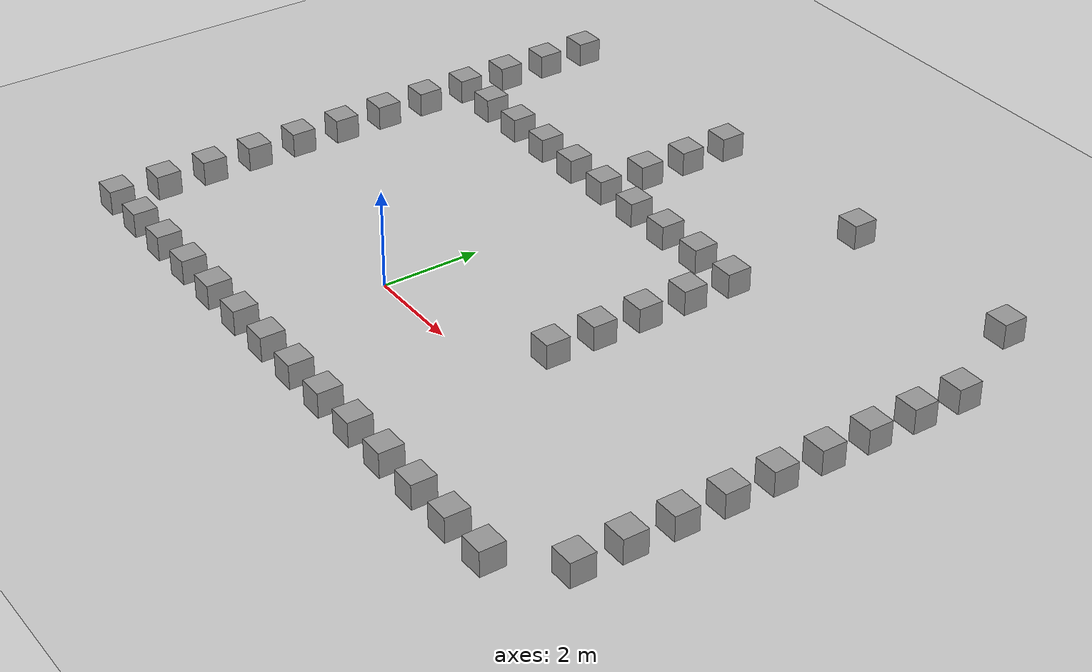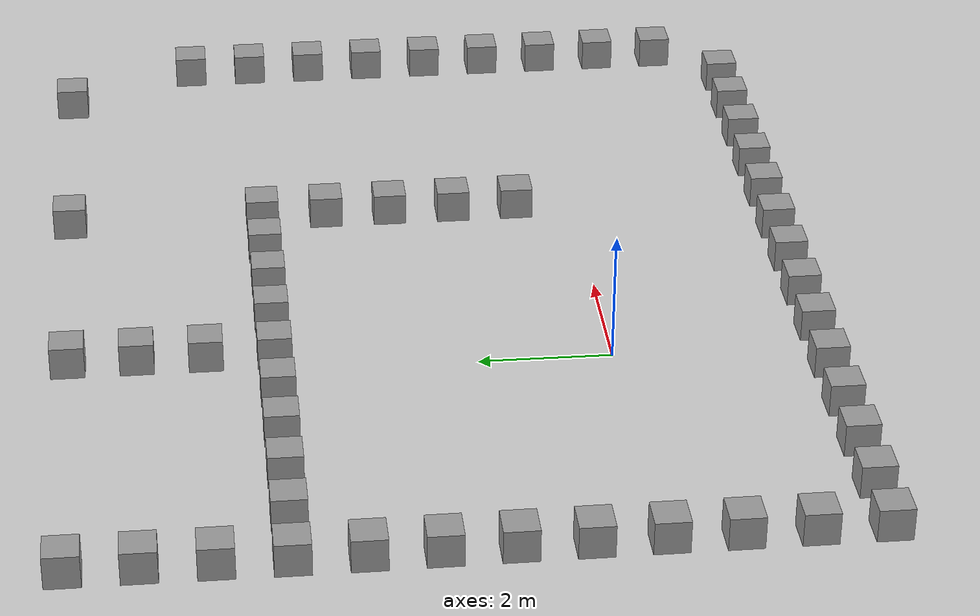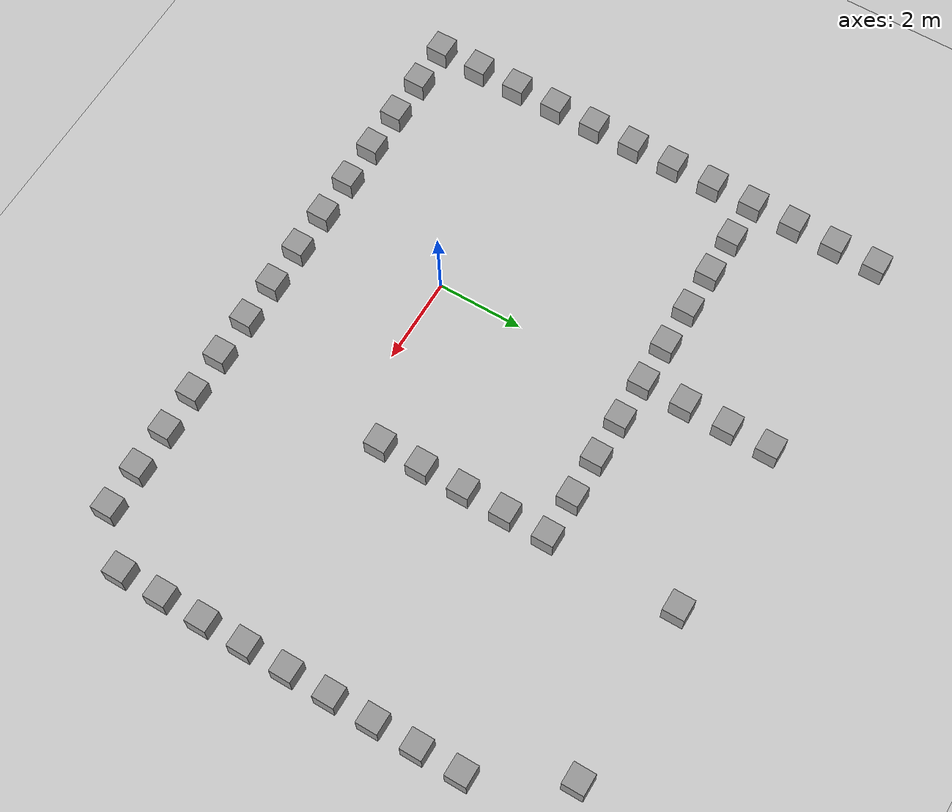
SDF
<sdf version="1.6">
 <world name="default">
  <model name="ground_plane">
   <static>1</static>
   <link name="link">
    <collision name="collision">
     <geometry><plane><normal>0 0 1</normal><size>100 100</size></plane></geometry>
     <surface><friction><ode><mu>100</mu><mu2>50</mu2></ode></friction></surface>
    </collision>
    <visual name="visual">
     <cast_shadows>0</cast_shadows>
     <geometry><plane><normal>0 0 1</normal><size>100 100</size></plane></geometry>
     <material>
      <script><uri>file://media/materials/scripts/gazebo.material</uri><name>Gazebo/Grey</name></script>
     </material>
    </visual>
    <velocity_decay><linear>0</linear><angular>0</angular></velocity_decay>
   </link>
  </model>
  <model name="unit_box_1">
   <pose>-5.01661 4.99523 0.5 0 -0 0.000223</pose>
   <static>true</static>
   <link name="link">
    <inertial>
     <mass>1</mass>
     <inertia><ixx>1</ixx><ixy>0</ixy><ixz>0</ixz><iyy>1</iyy><iyz>0</iyz><izz>1</izz></inertia>
    </inertial>
    <collision name="collision"><geometry><box><size>0.5 0.5 0.5</size></box></geometry></collision>
    <visual name="visual">
     <geometry><box><size>0.5 0.5 0.5</size></box></geometry>
     <material>
      <script><uri>file://media/materials/scripts/gazebo.material</uri><name>Gazebo/Grey</name></script>
     </material>
    </visual>
    <velocity_decay><linear>0</linear><angular>0</angular></velocity_decay>
   </link>
   <static>0</static>
  </model>
  <model name="unit_box_2">
   <pose>-4.01641 4.99001 0.5 0 -0 3e-05</pose>
   <static>true</static>
   <link name="link">
    <inertial>
     <mass>1</mass>
     <inertia><ixx>1</ixx><ixy>0</ixy><ixz>0</ixz><iyy>1</iyy><iyz>0</iyz><izz>1</izz></inertia>
    </inertial>
    <collision name="collision"><geometry><box><size>0.5 0.5 0.5</size></box></geometry></collision>
    <visual name="visual">
     <geometry><box><size>0.5 0.5 0.5</size></box></geometry>
     <material>
      <script><uri>file://media/materials/scripts/gazebo.material</uri><name>Gazebo/Grey</name></script>
     </material>
    </visual>
    <velocity_decay><linear>0</linear><angular>0</angular></velocity_decay>
   </link>
   <static>0</static>
  </model>
  <model name="unit_box_3">
   <pose>-3.0164 4.98791 0.5 0 -0 2.1e-05</pose>
   <static>true</static>
   <link name="link">
    <inertial>
     <mass>1</mass>
     <inertia><ixx>1</ixx><ixy>0</ixy><ixz>0</ixz><iyy>1</iyy><iyz>0</iyz><izz>1</izz></inertia>
    </inertial>
    <collision name="collision"><geometry><box><size>0.5 0.5 0.5</size></box></geometry></collision>
    <visual name="visual">
     <geometry><box><size>0.5 0.5 0.5</size></box></geometry>
     <material>
      <script><uri>file://media/materials/scripts/gazebo.material</uri><name>Gazebo/Grey</name></script>
     </material>
    </visual>
    <velocity_decay><linear>0</linear><angular>0</angular></velocity_decay>
   </link>
   <static>0</static>
  </model>
  <model name="unit_box_4">
   <pose>-2.01625 4.98914 0.5 0 -0 -0.000278</pose>
   <static>true</static>
   <link name="link">
    <inertial>
     <mass>1</mass>
     <inertia><ixx>1</ixx><ixy>0</ixy><ixz>0</ixz><iyy>1</iyy><iyz>0</iyz><izz>1</izz></inertia>
    </inertial>
    <collision name="collision"><geometry><box><size>0.5 0.5 0.5</size></box></geometry></collision>
    <visual name="visual">
     <geometry><box><size>0.5 0.5 0.5</size></box></geometry>
     <material>
      <script><uri>file://media/materials/scripts/gazebo.material</uri><name>Gazebo/Grey</name></script>
     </material>
    </visual>
    <velocity_decay><linear>0</linear><angular>0</angular></velocity_decay>
   </link>
   <static>0</static>
  </model>
  <model name="unit_box_5">
   <pose>-1.01623 4.98884 0.5 0 -0 -0.000319</pose>
   <static>true</static>
   <link name="link">
    <inertial>
     <mass>1</mass>
     <inertia><ixx>1</ixx><ixy>0</ixy><ixz>0</ixz><iyy>1</iyy><iyz>0</iyz><izz>1</izz></inertia>
    </inertial>
    <collision name="collision"><geometry><box><size>0.5 0.5 0.5</size></box></geometry></collision>
    <visual name="visual">
     <geometry><box><size>0.5 0.5 0.5</size></box></geometry>
     <material>
      <script><uri>file://media/materials/scripts/gazebo.material</uri><name>Gazebo/Grey</name></script>
     </material>
    </visual>
    <velocity_decay><linear>0</linear><angular>0</angular></velocity_decay>
   </link>
   <static>0</static>
  </model>
  <model name="unit_box_6">
   <pose>-0.01622 4.99333 0.5 0 0 -0.000328</pose>
   <static>true</static>
   <link name="link">
    <inertial>
     <mass>1</mass>
     <inertia><ixx>1</ixx><ixy>0</ixy><ixz>0</ixz><iyy>1</iyy><iyz>0</iyz><izz>1</izz></inertia>
    </inertial>
    <collision name="collision"><geometry><box><size>0.5 0.5 0.5</size></box></geometry></collision>
    <visual name="visual">
     <geometry><box><size>0.5 0.5 0.5</size></box></geometry>
     <material>
      <script><uri>file://media/materials/scripts/gazebo.material</uri><name>Gazebo/Grey</name></script>
     </material>
    </visual>
    <velocity_decay><linear>0</linear><angular>0</angular></velocity_decay>
   </link>
   <static>0</static>
  </model>
  <model name="unit_box_7">
   <pose>0.984482 4.99573 0.5 -0 -0 -0.000753</pose>
   <static>true</static>
   <link name="link">
    <inertial>
     <mass>1</mass>
     <inertia><ixx>1</ixx><ixy>0</ixy><ixz>0</ixz><iyy>1</iyy><iyz>0</iyz><izz>1</izz></inertia>
    </inertial>
    <collision name="collision"><geometry><box><size>0.5 0.5 0.5</size></box></geometry></collision>
    <visual name="visual">
     <geometry><box><size>0.5 0.5 0.5</size></box></geometry>
     <material>
      <script><uri>file://media/materials/scripts/gazebo.material</uri><name>Gazebo/Grey</name></script>
     </material>
    </visual>
    <velocity_decay><linear>0</linear><angular>0</angular></velocity_decay>
   </link>
   <static>0</static>
  </model>
  <model name="unit_box_8">
   <pose>1.98452 4.9935 0.5 -0 -0 -0.000671</pose>
   <static>true</static>
   <link name="link">
    <inertial>
     <mass>1</mass>
     <inertia><ixx>1</ixx><ixy>0</ixy><ixz>0</ixz><iyy>1</iyy><iyz>0</iyz><izz>1</izz></inertia>
    </inertial>
    <collision name="collision"><geometry><box><size>0.5 0.5 0.5</size></box></geometry></collision>
    <visual name="visual">
     <geometry><box><size>0.5 0.5 0.5</size></box></geometry>
     <material>
      <script><uri>file://media/materials/scripts/gazebo.material</uri><name>Gazebo/Grey</name></script>
     </material>
    </visual>
    <velocity_decay><linear>0</linear><angular>0</angular></velocity_decay>
   </link>
   <static>0</static>
  </model>
  <model name="unit_box_9">
   <pose>2.98458 5.00046 0.5 -0 -0 -0.000565</pose>
   <static>true</static>
   <link name="link">
    <inertial>
     <mass>1</mass>
     <inertia><ixx>1</ixx><ixy>0</ixy><ixz>0</ixz><iyy>1</iyy><iyz>0</iyz><izz>1</izz></inertia>
    </inertial>
    <collision name="collision"><geometry><box><size>0.5 0.5 0.5</size></box></geometry></collision>
    <visual name="visual">
     <geometry><box><size>0.5 0.5 0.5</size></box></geometry>
     <material>
      <script><uri>file://media/materials/scripts/gazebo.material</uri><name>Gazebo/Grey</name></script>
     </material>
    </visual>
    <velocity_decay><linear>0</linear><angular>0</angular></velocity_decay>
   </link>
   <static>0</static>
  </model>
  <model name="unit_box_10">
   <pose>3.9846 4.99846 0.5 0 0 -0.000527</pose>
   <static>true</static>
   <link name="link">
    <inertial>
     <mass>1</mass>
     <inertia><ixx>1</ixx><ixy>0</ixy><ixz>0</ixz><iyy>1</iyy><iyz>0</iyz><izz>1</izz></inertia>
    </inertial>
    <collision name="collision"><geometry><box><size>0.5 0.5 0.5</size></box></geometry></collision>
    <visual name="visual">
     <geometry><box><size>0.5 0.5 0.5</size></box></geometry>
     <material>
      <script><uri>file://media/materials/scripts/gazebo.material</uri><name>Gazebo/Grey</name></script>
     </material>
    </visual>
    <velocity_decay><linear>0</linear><angular>0</angular></velocity_decay>
   </link>
   <static>0</static>
  </model>
  <model name="unit_box_11">
   <pose>3.98561 3.99843 0.5 -0 -0 -0.000466</pose>
   <static>true</static>
   <link name="link">
    <inertial>
     <mass>1</mass>
     <inertia><ixx>1</ixx><ixy>0</ixy><ixz>0</ixz><iyy>1</iyy><iyz>0</iyz><izz>1</izz></inertia>
    </inertial>
    <collision name="collision"><geometry><box><size>0.5 0.5 0.5</size></box></geometry></collision>
    <visual name="visual">
     <geometry><box><size>0.5 0.5 0.5</size></box></geometry>
     <material>
      <script><uri>file://media/materials/scripts/gazebo.material</uri><name>Gazebo/Grey</name></script>
     </material>
    </visual>
    <velocity_decay><linear>0</linear><angular>0</angular></velocity_decay>
   </link>
   <static>0</static>
  </model>
  <model name="unit_box_12">
   <pose>3.98357 2.99635 0.5 0 -0 -0.000581</pose>
   <static>true</static>
   <link name="link">
    <inertial>
     <mass>1</mass>
     <inertia><ixx>1</ixx><ixy>0</ixy><ixz>0</ixz><iyy>1</iyy><iyz>0</iyz><izz>1</izz></inertia>
    </inertial>
    <collision name="collision"><geometry><box><size>0.5 0.5 0.5</size></box></geometry></collision>
    <visual name="visual">
     <geometry><box><size>0.5 0.5 0.5</size></box></geometry>
     <material>
      <script><uri>file://media/materials/scripts/gazebo.material</uri><name>Gazebo/Grey</name></script>
     </material>
    </visual>
    <velocity_decay><linear>0</linear><angular>0</angular></velocity_decay>
   </link>
   <static>0</static>
  </model>
  <model name="unit_box_13">
   <pose>3.98484 1.99635 0.5 0 -0 -0.000581</pose>
   <static>true</static>
   <link name="link">
    <inertial>
     <mass>1</mass>
     <inertia><ixx>1</ixx><ixy>0</ixy><ixz>0</ixz><iyy>1</iyy><iyz>0</iyz><izz>1</izz></inertia>
    </inertial>
    <collision name="collision"><geometry><box><size>0.5 0.5 0.5</size></box></geometry></collision>
    <visual name="visual">
     <geometry><box><size>0.5 0.5 0.5</size></box></geometry>
     <material>
      <script><uri>file://media/materials/scripts/gazebo.material</uri><name>Gazebo/Grey</name></script>
     </material>
    </visual>
    <velocity_decay><linear>0</linear><angular>0</angular></velocity_decay>
   </link>
   <static>0</static>
  </model>
  <model name="unit_box_14">
   <pose>3.98502 0.996332 0.5 0 -0 -0.000611</pose>
   <static>true</static>
   <link name="link">
    <inertial>
     <mass>1</mass>
     <inertia><ixx>1</ixx><ixy>0</ixy><ixz>0</ixz><iyy>1</iyy><iyz>0</iyz><izz>1</izz></inertia>
    </inertial>
    <collision name="collision"><geometry><box><size>0.5 0.5 0.5</size></box></geometry></collision>
    <visual name="visual">
     <geometry><box><size>0.5 0.5 0.5</size></box></geometry>
     <material>
      <script><uri>file://media/materials/scripts/gazebo.material</uri><name>Gazebo/Grey</name></script>
     </material>
    </visual>
    <velocity_decay><linear>0</linear><angular>0</angular></velocity_decay>
   </link>
   <static>0</static>
  </model>
  <model name="unit_box_15">
   <pose>-0.999934 -2.99993 0.5 0 0 -3.9e-05</pose>
   <static>true</static>
   <link name="link">
    <inertial>
     <mass>1</mass>
     <inertia><ixx>1</ixx><ixy>0</ixy><ixz>0</ixz><iyy>1</iyy><iyz>0</iyz><izz>1</izz></inertia>
    </inertial>
    <collision name="collision"><geometry><box><size>0.5 0.5 0.5</size></box></geometry></collision>
    <visual name="visual">
     <geometry><box><size>0.5 0.5 0.5</size></box></geometry>
     <material>
      <script><uri>file://media/materials/scripts/gazebo.material</uri><name>Gazebo/Grey</name></script>
     </material>
    </visual>
    <velocity_decay><linear>0</linear><angular>0</angular></velocity_decay>
   </link>
   <static>0</static>
  </model>
  <model name="unit_box_16">
   <pose>6.7e-05 -2.99994 0.5 0 -0 -3.6e-05</pose>
   <static>true</static>
   <link name="link">
    <inertial>
     <mass>1</mass>
     <inertia><ixx>1</ixx><ixy>0</ixy><ixz>0</ixz><iyy>1</iyy><iyz>0</iyz><izz>1</izz></inertia>
    </inertial>
    <collision name="collision"><geometry><box><size>0.5 0.5 0.5</size></box></geometry></collision>
    <visual name="visual">
     <geometry><box><size>0.5 0.5 0.5</size></box></geometry>
     <material>
      <script><uri>file://media/materials/scripts/gazebo.material</uri><name>Gazebo/Grey</name></script>
     </material>
    </visual>
    <velocity_decay><linear>0</linear><angular>0</angular></velocity_decay>
   </link>
   <static>0</static>
  </model>
  <model name="unit_box_17">
   <pose>1.00008 -2.99994 0.5 -0 -0 -1.9e-05</pose>
   <static>true</static>
   <link name="link">
    <inertial>
     <mass>1</mass>
     <inertia><ixx>1</ixx><ixy>0</ixy><ixz>0</ixz><iyy>1</iyy><iyz>0</iyz><izz>1</izz></inertia>
    </inertial>
    <collision name="collision"><geometry><box><size>0.5 0.5 0.5</size></box></geometry></collision>
    <visual name="visual">
     <geometry><box><size>0.5 0.5 0.5</size></box></geometry>
     <material>
      <script><uri>file://media/materials/scripts/gazebo.material</uri><name>Gazebo/Grey</name></script>
     </material>
    </visual>
    <velocity_decay><linear>0</linear><angular>0</angular></velocity_decay>
   </link>
   <static>0</static>
  </model>
  <model name="unit_box_18">
   <pose>2.00008 -2.99995 0.5 0 0 -1.5e-05</pose>
   <static>true</static>
   <link name="link">
    <inertial>
     <mass>1</mass>
     <inertia><ixx>1</ixx><ixy>0</ixy><ixz>0</ixz><iyy>1</iyy><iyz>0</iyz><izz>1</izz></inertia>
    </inertial>
    <collision name="collision"><geometry><box><size>0.5 0.5 0.5</size></box></geometry></collision>
    <visual name="visual">
     <geometry><box><size>0.5 0.5 0.5</size></box></geometry>
     <material>
      <script><uri>file://media/materials/scripts/gazebo.material</uri><name>Gazebo/Grey</name></script>
     </material>
    </visual>
    <velocity_decay><linear>0</linear><angular>0</angular></velocity_decay>
   </link>
   <static>0</static>
  </model>
  <model name="unit_box_19">
   <pose>3.00008 -2.9999 0.5 -0 -0 -1e-05</pose>
   <static>true</static>
   <link name="link">
    <inertial>
     <mass>1</mass>
     <inertia><ixx>1</ixx><ixy>0</ixy><ixz>0</ixz><iyy>1</iyy><iyz>0</iyz><izz>1</izz></inertia>
    </inertial>
    <collision name="collision"><geometry><box><size>0.5 0.5 0.5</size></box></geometry></collision>
    <visual name="visual">
     <geometry><box><size>0.5 0.5 0.5</size></box></geometry>
     <material>
      <script><uri>file://media/materials/scripts/gazebo.material</uri><name>Gazebo/Grey</name></script>
     </material>
    </visual>
    <velocity_decay><linear>0</linear><angular>0</angular></velocity_decay>
   </link>
   <static>0</static>
  </model>
  <model name="unit_box_20">
   <pose>4.00008 -2.99993 0.5 0 0 -1e-05</pose>
   <static>true</static>
   <link name="link">
    <inertial>
     <mass>1</mass>
     <inertia><ixx>1</ixx><ixy>0</ixy><ixz>0</ixz><iyy>1</iyy><iyz>0</iyz><izz>1</izz></inertia>
    </inertial>
    <collision name="collision"><geometry><box><size>0.5 0.5 0.5</size></box></geometry></collision>
    <visual name="visual">
     <geometry><box><size>0.5 0.5 0.5</size></box></geometry>
     <material>
      <script><uri>file://media/materials/scripts/gazebo.material</uri><name>Gazebo/Grey</name></script>
     </material>
    </visual>
    <velocity_decay><linear>0</linear><angular>0</angular></velocity_decay>
   </link>
   <static>0</static>
  </model>
  <model name="unit_box_21">
   <pose>5.00008 -2.99993 0.5 -0 -0 -1.2e-05</pose>
   <static>true</static>
   <link name="link">
    <inertial>
     <mass>1</mass>
     <inertia><ixx>1</ixx><ixy>0</ixy><ixz>0</ixz><iyy>1</iyy><iyz>0</iyz><izz>1</izz></inertia>
    </inertial>
    <collision name="collision"><geometry><box><size>0.5 0.5 0.5</size></box></geometry></collision>
    <visual name="visual">
     <geometry><box><size>0.5 0.5 0.5</size></box></geometry>
     <material>
      <script><uri>file://media/materials/scripts/gazebo.material</uri><name>Gazebo/Grey</name></script>
     </material>
    </visual>
    <velocity_decay><linear>0</linear><angular>0</angular></velocity_decay>
   </link>
   <static>0</static>
  </model>
  <model name="unit_box_22">
   <pose>6.00009 -2.99997 0.5 0 0 -1.2e-05</pose>
   <static>true</static>
   <link name="link">
    <inertial>
     <mass>1</mass>
     <inertia><ixx>1</ixx><ixy>0</ixy><ixz>0</ixz><iyy>1</iyy><iyz>0</iyz><izz>1</izz></inertia>
    </inertial>
    <collision name="collision"><geometry><box><size>0.5 0.5 0.5</size></box></geometry></collision>
    <visual name="visual">
     <geometry><box><size>0.5 0.5 0.5</size></box></geometry>
     <material>
      <script><uri>file://media/materials/scripts/gazebo.material</uri><name>Gazebo/Grey</name></script>
     </material>
    </visual>
    <velocity_decay><linear>0</linear><angular>0</angular></velocity_decay>
   </link>
   <static>0</static>
  </model>
  <model name="unit_box_23">
   <pose>7.00009 -2.99996 0.5 0 -0 -1e-05</pose>
   <static>true</static>
   <link name="link">
    <inertial>
     <mass>1</mass>
     <inertia><ixx>1</ixx><ixy>0</ixy><ixz>0</ixz><iyy>1</iyy><iyz>0</iyz><izz>1</izz></inertia>
    </inertial>
    <collision name="collision"><geometry><box><size>0.5 0.5 0.5</size></box></geometry></collision>
    <visual name="visual">
     <geometry><box><size>0.5 0.5 0.5</size></box></geometry>
     <material>
      <script><uri>file://media/materials/scripts/gazebo.material</uri><name>Gazebo/Grey</name></script>
     </material>
    </visual>
    <velocity_decay><linear>0</linear><angular>0</angular></velocity_decay>
   </link>
   <static>0</static>
  </model>
  <model name="unit_box_24">
   <pose>8.00009 -3 0.5 0 0 -1.4e-05</pose>
   <static>true</static>
   <link name="link">
    <inertial>
     <mass>1</mass>
     <inertia><ixx>1</ixx><ixy>0</ixy><ixz>0</ixz><iyy>1</iyy><iyz>0</iyz><izz>1</izz></inertia>
    </inertial>
    <collision name="collision"><geometry><box><size>0.5 0.5 0.5</size></box></geometry></collision>
    <visual name="visual">
     <geometry><box><size>0.5 0.5 0.5</size></box></geometry>
     <material>
      <script><uri>file://media/materials/scripts/gazebo.material</uri><name>Gazebo/Grey</name></script>
     </material>
    </visual>
    <velocity_decay><linear>0</linear><angular>0</angular></velocity_decay>
   </link>
   <static>0</static>
  </model>
  <model name="unit_box_26">
   <pose>8.99998 -2.00001 0.5 -0 -0 -1.1e-05</pose>
   <static>true</static>
   <link name="link">
    <inertial>
     <mass>1</mass>
     <inertia><ixx>1</ixx><ixy>0</ixy><ixz>0</ixz><iyy>1</iyy><iyz>0</iyz><izz>1</izz></inertia>
    </inertial>
    <collision name="collision"><geometry><box><size>0.5 0.5 0.5</size></box></geometry></collision>
    <visual name="visual">
     <geometry><box><size>0.5 0.5 0.5</size></box></geometry>
     <material>
      <script><uri>file://media/materials/scripts/gazebo.material</uri><name>Gazebo/Grey</name></script>
     </material>
    </visual>
    <velocity_decay><linear>0</linear><angular>0</angular></velocity_decay>
   </link>
   <static>0</static>
  </model>
  <model name="unit_box_27">
   <pose>8.99997 -1.00001 0.5 0 0 -1e-05</pose>
   <static>true</static>
   <link name="link">
    <inertial>
     <mass>1</mass>
     <inertia><ixx>1</ixx><ixy>0</ixy><ixz>0</ixz><iyy>1</iyy><iyz>0</iyz><izz>1</izz></inertia>
    </inertial>
    <collision name="collision"><geometry><box><size>0.5 0.5 0.5</size></box></geometry></collision>
    <visual name="visual">
     <geometry><box><size>0.5 0.5 0.5</size></box></geometry>
     <material>
      <script><uri>file://media/materials/scripts/gazebo.material</uri><name>Gazebo/Grey</name></script>
     </material>
    </visual>
    <velocity_decay><linear>0</linear><angular>0</angular></velocity_decay>
   </link>
   <static>0</static>
  </model>
  <model name="unit_box_28">
   <pose>8.99994 -8e-06 0.5 -0 -0 -1.1e-05</pose>
   <static>true</static>
   <link name="link">
    <inertial>
     <mass>1</mass>
     <inertia><ixx>1</ixx><ixy>0</ixy><ixz>0</ixz><iyy>1</iyy><iyz>0</iyz><izz>1</izz></inertia>
    </inertial>
    <collision name="collision"><geometry><box><size>0.5 0.5 0.5</size></box></geometry></collision>
    <visual name="visual">
     <geometry><box><size>0.5 0.5 0.5</size></box></geometry>
     <material>
      <script><uri>file://media/materials/scripts/gazebo.material</uri><name>Gazebo/Grey</name></script>
     </material>
    </visual>
    <velocity_decay><linear>0</linear><angular>0</angular></velocity_decay>
   </link>
   <static>0</static>
  </model>
  <model name="unit_box_29">
   <pose>8.99995 0.999993 0.5 0 -0 -1.1e-05</pose>
   <static>true</static>
   <link name="link">
    <inertial>
     <mass>1</mass>
     <inertia><ixx>1</ixx><ixy>0</ixy><ixz>0</ixz><iyy>1</iyy><iyz>0</iyz><izz>1</izz></inertia>
    </inertial>
    <collision name="collision"><geometry><box><size>0.5 0.5 0.5</size></box></geometry></collision>
    <visual name="visual">
     <geometry><box><size>0.5 0.5 0.5</size></box></geometry>
     <material>
      <script><uri>file://media/materials/scripts/gazebo.material</uri><name>Gazebo/Grey</name></script>
     </material>
    </visual>
    <velocity_decay><linear>0</linear><angular>0</angular></velocity_decay>
   </link>
   <static>0</static>
  </model>
  <model name="unit_box_30">
   <pose>8.99995 1.99999 0.5 0 0 -7e-06</pose>
   <static>true</static>
   <link name="link">
    <inertial>
     <mass>1</mass>
     <inertia><ixx>1</ixx><ixy>0</ixy><ixz>0</ixz><iyy>1</iyy><iyz>0</iyz><izz>1</izz></inertia>
    </inertial>
    <collision name="collision"><geometry><box><size>0.5 0.5 0.5</size></box></geometry></collision>
    <visual name="visual">
     <geometry><box><size>0.5 0.5 0.5</size></box></geometry>
     <material>
      <script><uri>file://media/materials/scripts/gazebo.material</uri><name>Gazebo/Grey</name></script>
     </material>
    </visual>
    <velocity_decay><linear>0</linear><angular>0</angular></velocity_decay>
   </link>
   <static>0</static>
  </model>
  <model name="unit_box_31">
   <pose>8.99997 3 0.5 -0 -0 -6e-06</pose>
   <static>true</static>
   <link name="link">
    <inertial>
     <mass>1</mass>
     <inertia><ixx>1</ixx><ixy>0</ixy><ixz>0</ixz><iyy>1</iyy><iyz>0</iyz><izz>1</izz></inertia>
    </inertial>
    <collision name="collision"><geometry><box><size>0.5 0.5 0.5</size></box></geometry></collision>
    <visual name="visual">
     <geometry><box><size>0.5 0.5 0.5</size></box></geometry>
     <material>
      <script><uri>file://media/materials/scripts/gazebo.material</uri><name>Gazebo/Grey</name></script>
     </material>
    </visual>
    <velocity_decay><linear>0</linear><angular>0</angular></velocity_decay>
   </link>
   <static>0</static>
  </model>
  <model name="unit_box_32">
   <pose>8.99997 4 0.5 0 0 -8e-06</pose>
   <static>true</static>
   <link name="link">
    <inertial>
     <mass>1</mass>
     <inertia><ixx>1</ixx><ixy>0</ixy><ixz>0</ixz><iyy>1</iyy><iyz>0</iyz><izz>1</izz></inertia>
    </inertial>
    <collision name="collision"><geometry><box><size>0.5 0.5 0.5</size></box></geometry></collision>
    <visual name="visual">
     <geometry><box><size>0.5 0.5 0.5</size></box></geometry>
     <material>
      <script><uri>file://media/materials/scripts/gazebo.material</uri><name>Gazebo/Grey</name></script>
     </material>
    </visual>
    <velocity_decay><linear>0</linear><angular>0</angular></velocity_decay>
   </link>
   <static>0</static>
  </model>
  <model name="unit_box_33">
   <pose>9 5 0.5 -0 -0 -7e-06</pose>
   <static>true</static>
   <link name="link">
    <inertial>
     <mass>1</mass>
     <inertia><ixx>1</ixx><ixy>0</ixy><ixz>0</ixz><iyy>1</iyy><iyz>0</iyz><izz>1</izz></inertia>
    </inertial>
    <collision name="collision"><geometry><box><size>0.5 0.5 0.5</size></box></geometry></collision>
    <visual name="visual">
     <geometry><box><size>0.5 0.5 0.5</size></box></geometry>
     <material>
      <script><uri>file://media/materials/scripts/gazebo.material</uri><name>Gazebo/Grey</name></script>
     </material>
    </visual>
    <velocity_decay><linear>0</linear><angular>0</angular></velocity_decay>
   </link>
   <static>0</static>
  </model>
  <model name="unit_box_34">
   <pose>9 6 0.5 -0 -0 -6e-06</pose>
   <static>true</static>
   <link name="link">
    <inertial>
     <mass>1</mass>
     <inertia><ixx>1</ixx><ixy>0</ixy><ixz>0</ixz><iyy>1</iyy><iyz>0</iyz><izz>1</izz></inertia>
    </inertial>
    <collision name="collision"><geometry><box><size>0.5 0.5 0.5</size></box></geometry></collision>
    <visual name="visual">
     <geometry><box><size>0.5 0.5 0.5</size></box></geometry>
     <material>
      <script><uri>file://media/materials/scripts/gazebo.material</uri><name>Gazebo/Grey</name></script>
     </material>
    </visual>
    <velocity_decay><linear>0</linear><angular>0</angular></velocity_decay>
   </link>
   <static>0</static>
  </model>
  <model name="unit_box_40">
   <pose>-5.01481 3.99235 0.5 0 -0 0.003225</pose>
   <static>true</static>
   <link name="link">
    <inertial>
     <mass>1</mass>
     <inertia><ixx>1</ixx><ixy>0</ixy><ixz>0</ixz><iyy>1</iyy><iyz>0</iyz><izz>1</izz></inertia>
    </inertial>
    <collision name="collision"><geometry><box><size>0.5 0.5 0.5</size></box></geometry></collision>
    <visual name="visual">
     <geometry><box><size>0.5 0.5 0.5</size></box></geometry>
     <material>
      <script><uri>file://media/materials/scripts/gazebo.material</uri><name>Gazebo/Grey</name></script>
     </material>
    </visual>
    <velocity_decay><linear>0</linear><angular>0</angular></velocity_decay>
   </link>
   <static>0</static>
  </model>
  <model name="unit_box_41">
   <pose>-5.00826 2.99203 0.5 0 -0 0.002598</pose>
   <static>true</static>
   <link name="link">
    <inertial>
     <mass>1</mass>
     <inertia><ixx>1</ixx><ixy>0</ixy><ixz>0</ixz><iyy>1</iyy><iyz>0</iyz><izz>1</izz></inertia>
    </inertial>
    <collision name="collision"><geometry><box><size>0.5 0.5 0.5</size></box></geometry></collision>
    <visual name="visual">
     <geometry><box><size>0.5 0.5 0.5</size></box></geometry>
     <material>
      <script><uri>file://media/materials/scripts/gazebo.material</uri><name>Gazebo/Grey</name></script>
     </material>
    </visual>
    <velocity_decay><linear>0</linear><angular>0</angular></velocity_decay>
   </link>
   <static>0</static>
  </model>
  <model name="unit_box_42">
   <pose>-5.0021 1.99164 0.5 0 -0 0.001796</pose>
   <static>true</static>
   <link name="link">
    <inertial>
     <mass>1</mass>
     <inertia><ixx>1</ixx><ixy>0</ixy><ixz>0</ixz><iyy>1</iyy><iyz>0</iyz><izz>1</izz></inertia>
    </inertial>
    <collision name="collision"><geometry><box><size>0.5 0.5 0.5</size></box></geometry></collision>
    <visual name="visual">
     <geometry><box><size>0.5 0.5 0.5</size></box></geometry>
     <material>
      <script><uri>file://media/materials/scripts/gazebo.material</uri><name>Gazebo/Grey</name></script>
     </material>
    </visual>
    <velocity_decay><linear>0</linear><angular>0</angular></velocity_decay>
   </link>
   <static>0</static>
  </model>
  <model name="unit_box_43">
   <pose>-5.00197 0.99143 0.5 0 -0 0.001375</pose>
   <static>true</static>
   <link name="link">
    <inertial>
     <mass>1</mass>
     <inertia><ixx>1</ixx><ixy>0</ixy><ixz>0</ixz><iyy>1</iyy><iyz>0</iyz><izz>1</izz></inertia>
    </inertial>
    <collision name="collision"><geometry><box><size>0.5 0.5 0.5</size></box></geometry></collision>
    <visual name="visual">
     <geometry><box><size>0.5 0.5 0.5</size></box></geometry>
     <material>
      <script><uri>file://media/materials/scripts/gazebo.material</uri><name>Gazebo/Grey</name></script>
     </material>
    </visual>
    <velocity_decay><linear>0</linear><angular>0</angular></velocity_decay>
   </link>
   <static>0</static>
  </model>
  <model name="unit_box_44">
   <pose>-5.00065 -0.008792 0.5 0 -0 0.000932</pose>
   <static>true</static>
   <link name="link">
    <inertial>
     <mass>1</mass>
     <inertia><ixx>1</ixx><ixy>0</ixy><ixz>0</ixz><iyy>1</iyy><iyz>0</iyz><izz>1</izz></inertia>
    </inertial>
    <collision name="collision"><geometry><box><size>0.5 0.5 0.5</size></box></geometry></collision>
    <visual name="visual">
     <geometry><box><size>0.5 0.5 0.5</size></box></geometry>
     <material>
      <script><uri>file://media/materials/scripts/gazebo.material</uri><name>Gazebo/Grey</name></script>
     </material>
    </visual>
    <velocity_decay><linear>0</linear><angular>0</angular></velocity_decay>
   </link>
   <static>0</static>
  </model>
  <model name="unit_box_45">
   <pose>-5.00074 -1.00881 0.5 0 -0 0.000893</pose>
   <static>true</static>
   <link name="link">
    <inertial>
     <mass>1</mass>
     <inertia><ixx>1</ixx><ixy>0</ixy><ixz>0</ixz><iyy>1</iyy><iyz>0</iyz><izz>1</izz></inertia>
    </inertial>
    <collision name="collision"><geometry><box><size>0.5 0.5 0.5</size></box></geometry></collision>
    <visual name="visual">
     <geometry><box><size>0.5 0.5 0.5</size></box></geometry>
     <material>
      <script><uri>file://media/materials/scripts/gazebo.material</uri><name>Gazebo/Grey</name></script>
     </material>
    </visual>
    <velocity_decay><linear>0</linear><angular>0</angular></velocity_decay>
   </link>
   <static>0</static>
  </model>
  <model name="unit_box_46">
   <pose>-5.00037 -2.00886 0.5 0 -0 0.000802</pose>
   <static>true</static>
   <link name="link">
    <inertial>
     <mass>1</mass>
     <inertia><ixx>1</ixx><ixy>0</ixy><ixz>0</ixz><iyy>1</iyy><iyz>0</iyz><izz>1</izz></inertia>
    </inertial>
    <collision name="collision"><geometry><box><size>0.5 0.5 0.5</size></box></geometry></collision>
    <visual name="visual">
     <geometry><box><size>0.5 0.5 0.5</size></box></geometry>
     <material>
      <script><uri>file://media/materials/scripts/gazebo.material</uri><name>Gazebo/Grey</name></script>
     </material>
    </visual>
    <velocity_decay><linear>0</linear><angular>0</angular></velocity_decay>
   </link>
   <static>0</static>
  </model>
  <model name="unit_box_47">
   <pose>-5.00047 -3.0089 0.5 0 -0 0.000729</pose>
   <static>true</static>
   <link name="link">
    <inertial>
     <mass>1</mass>
     <inertia><ixx>1</ixx><ixy>0</ixy><ixz>0</ixz><iyy>1</iyy><iyz>0</iyz><izz>1</izz></inertia>
    </inertial>
    <collision name="collision"><geometry><box><size>0.5 0.5 0.5</size></box></geometry></collision>
    <visual name="visual">
     <geometry><box><size>0.5 0.5 0.5</size></box></geometry>
     <material>
      <script><uri>file://media/materials/scripts/gazebo.material</uri><name>Gazebo/Grey</name></script>
     </material>
    </visual>
    <velocity_decay><linear>0</linear><angular>0</angular></velocity_decay>
   </link>
   <static>0</static>
  </model>
  <model name="unit_box_48">
   <pose>-3.99998 -3.00036 0.5 0 0 -0.000119</pose>
   <static>true</static>
   <link name="link">
    <inertial>
     <mass>1</mass>
     <inertia><ixx>1</ixx><ixy>0</ixy><ixz>0</ixz><iyy>1</iyy><iyz>0</iyz><izz>1</izz></inertia>
    </inertial>
    <collision name="collision"><geometry><box><size>0.5 0.5 0.5</size></box></geometry></collision>
    <visual name="visual">
     <geometry><box><size>0.5 0.5 0.5</size></box></geometry>
     <material>
      <script><uri>file://media/materials/scripts/gazebo.material</uri><name>Gazebo/Grey</name></script>
     </material>
    </visual>
    <velocity_decay><linear>0</linear><angular>0</angular></velocity_decay>
   </link>
   <static>0</static>
  </model>
  <model name="unit_box_49">
   <pose>-2.99995 -3.00005 0.5 -0 -0 -7.3e-05</pose>
   <static>true</static>
   <link name="link">
    <inertial>
     <mass>1</mass>
     <inertia><ixx>1</ixx><ixy>0</ixy><ixz>0</ixz><iyy>1</iyy><iyz>0</iyz><izz>1</izz></inertia>
    </inertial>
    <collision name="collision"><geometry><box><size>0.5 0.5 0.5</size></box></geometry></collision>
    <visual name="visual">
     <geometry><box><size>0.5 0.5 0.5</size></box></geometry>
     <material>
      <script><uri>file://media/materials/scripts/gazebo.material</uri><name>Gazebo/Grey</name></script>
     </material>
    </visual>
    <velocity_decay><linear>0</linear><angular>0</angular></velocity_decay>
   </link>
   <static>0</static>
  </model>
  <model name="unit_box_50">
   <pose>-1.99995 -3.00002 0.5 -0 -0 -7.1e-05</pose>
   <static>true</static>
   <link name="link">
    <inertial>
     <mass>1</mass>
     <inertia><ixx>1</ixx><ixy>0</ixy><ixz>0</ixz><iyy>1</iyy><iyz>0</iyz><izz>1</izz></inertia>
    </inertial>
    <collision name="collision"><geometry><box><size>0.5 0.5 0.5</size></box></geometry></collision>
    <visual name="visual">
     <geometry><box><size>0.5 0.5 0.5</size></box></geometry>
     <material>
      <script><uri>file://media/materials/scripts/gazebo.material</uri><name>Gazebo/Grey</name></script>
     </material>
    </visual>
    <velocity_decay><linear>0</linear><angular>0</angular></velocity_decay>
   </link>
   <static>0</static>
  </model>
  <model name="unit_box_51">
   <pose>8 7.99999 0.5 0 -0 2e-06</pose>
   <static>true</static>
   <link name="link">
    <inertial>
     <mass>1</mass>
     <inertia><ixx>1</ixx><ixy>0</ixy><ixz>0</ixz><iyy>1</iyy><iyz>0</iyz><izz>1</izz></inertia>
    </inertial>
    <collision name="collision"><geometry><box><size>0.5 0.5 0.5</size></box></geometry></collision>
    <visual name="visual">
     <geometry><box><size>0.5 0.5 0.5</size></box></geometry>
     <material>
      <script><uri>file://media/materials/scripts/gazebo.material</uri><name>Gazebo/Grey</name></script>
     </material>
    </visual>
    <velocity_decay><linear>0</linear><angular>0</angular></velocity_decay>
   </link>
   <static>0</static>
  </model>
  <model name="unit_box_57">
   <pose>-0.014979 5.99334 0.5 0 0 -0.00033</pose>
   <static>true</static>
   <link name="link">
    <inertial>
     <mass>1</mass>
     <inertia><ixx>1</ixx><ixy>0</ixy><ixz>0</ixz><iyy>1</iyy><iyz>0</iyz><izz>1</izz></inertia>
    </inertial>
    <collision name="collision"><geometry><box><size>0.5 0.5 0.5</size></box></geometry></collision>
    <visual name="visual">
     <geometry><box><size>0.5 0.5 0.5</size></box></geometry>
     <material>
      <script><uri>file://media/materials/scripts/gazebo.material</uri><name>Gazebo/Grey</name></script>
     </material>
    </visual>
    <velocity_decay><linear>0</linear><angular>0</angular></velocity_decay>
   </link>
   <static>0</static>
  </model>
  <model name="unit_box_58">
   <pose>-0.010958 6.99335 0.5 -0 -0 -0.00031</pose>
   <static>true</static>
   <link name="link">
    <inertial>
     <mass>1</mass>
     <inertia><ixx>1</ixx><ixy>0</ixy><ixz>0</ixz><iyy>1</iyy><iyz>0</iyz><izz>1</izz></inertia>
    </inertial>
    <collision name="collision"><geometry><box><size>0.5 0.5 0.5</size></box></geometry></collision>
    <visual name="visual">
     <geometry><box><size>0.5 0.5 0.5</size></box></geometry>
     <material>
      <script><uri>file://media/materials/scripts/gazebo.material</uri><name>Gazebo/Grey</name></script>
     </material>
    </visual>
    <velocity_decay><linear>0</linear><angular>0</angular></velocity_decay>
   </link>
   <static>0</static>
  </model>
  <model name="unit_box_59">
   <pose>-0.007655 7.99337 0.5 0 0 -0.000262</pose>
   <static>true</static>
   <link name="link">
    <inertial>
     <mass>1</mass>
     <inertia><ixx>1</ixx><ixy>0</ixy><ixz>0</ixz><iyy>1</iyy><iyz>0</iyz><izz>1</izz></inertia>
    </inertial>
    <collision name="collision"><geometry><box><size>0.5 0.5 0.5</size></box></geometry></collision>
    <visual name="visual">
     <geometry><box><size>0.5 0.5 0.5</size></box></geometry>
     <material>
      <script><uri>file://media/materials/scripts/gazebo.material</uri><name>Gazebo/Grey</name></script>
     </material>
    </visual>
    <velocity_decay><linear>0</linear><angular>0</angular></velocity_decay>
   </link>
   <static>0</static>
  </model>
  <model name="unit_box_61">
   <pose>-5.0071 5.99581 0.5 0 0 -0.000452</pose>
   <static>true</static>
   <link name="link">
    <inertial>
     <mass>1</mass>
     <inertia><ixx>1</ixx><ixy>0</ixy><ixz>0</ixz><iyy>1</iyy><iyz>0</iyz><izz>1</izz></inertia>
    </inertial>
    <collision name="collision"><geometry><box><size>0.5 0.5 0.5</size></box></geometry></collision>
    <visual name="visual">
     <geometry><box><size>0.5 0.5 0.5</size></box></geometry>
     <material>
      <script><uri>file://media/materials/scripts/gazebo.material</uri><name>Gazebo/Grey</name></script>
     </material>
    </visual>
    <velocity_decay><linear>0</linear><angular>0</angular></velocity_decay>
   </link>
   <static>0</static>
  </model>
  <model name="unit_box_67">
   <pose>-5.00001 6.99999 0.5 0 -0 9e-06</pose>
   <static>true</static>
   <link name="link">
    <inertial>
     <mass>1</mass>
     <inertia><ixx>1</ixx><ixy>0</ixy><ixz>0</ixz><iyy>1</iyy><iyz>0</iyz><izz>1</izz></inertia>
    </inertial>
    <collision name="collision"><geometry><box><size>0.5 0.5 0.5</size></box></geometry></collision>
    <visual name="visual">
     <geometry><box><size>0.5 0.5 0.5</size></box></geometry>
     <material>
      <script><uri>file://media/materials/scripts/gazebo.material</uri><name>Gazebo/Grey</name></script>
     </material>
    </visual>
    <velocity_decay><linear>0</linear><angular>0</angular></velocity_decay>
   </link>
   <static>0</static>
  </model>
  <model name="unit_box_68">
   <pose>-5.00001 7.99999 0.5 0 -0 8e-06</pose>
   <static>true</static>
   <link name="link">
    <inertial>
     <mass>1</mass>
     <inertia><ixx>1</ixx><ixy>0</ixy><ixz>0</ixz><iyy>1</iyy><iyz>0</iyz><izz>1</izz></inertia>
    </inertial>
    <collision name="collision"><geometry><box><size>0.5 0.5 0.5</size></box></geometry></collision>
    <visual name="visual">
     <geometry><box><size>0.5 0.5 0.5</size></box></geometry>
     <material>
      <script><uri>file://media/materials/scripts/gazebo.material</uri><name>Gazebo/Grey</name></script>
     </material>
    </visual>
    <velocity_decay><linear>0</linear><angular>0</angular></velocity_decay>
   </link>
   <static>0</static>
  </model>
  <model name="unit_box_90">
   <pose>3.99999 8 0.5 -0 -0 -0</pose>
   <static>true</static>
   <link name="link">
    <inertial>
     <mass>1</mass>
     <inertia><ixx>1</ixx><ixy>0</ixy><ixz>0</ixz><iyy>1</iyy><iyz>0</iyz><izz>1</izz></inertia>
    </inertial>
    <collision name="collision"><geometry><box><size>0.5 0.5 0.5</size></box></geometry></collision>
    <visual name="visual">
     <geometry><box><size>0.5 0.5 0.5</size></box></geometry>
     <material>
      <script><uri>file://media/materials/scripts/gazebo.material</uri><name>Gazebo/Grey</name></script>
     </material>
    </visual>
    <velocity_decay><linear>0</linear><angular>0</angular></velocity_decay>
   </link>
   <static>0</static>
  </model>
 </world>
</sdf>
